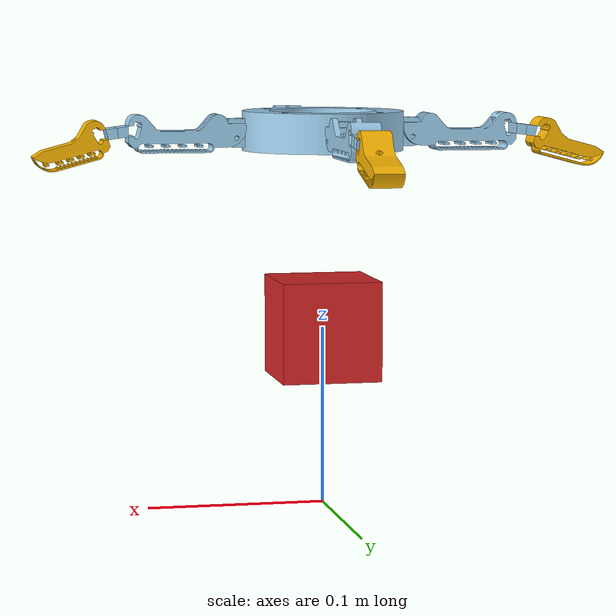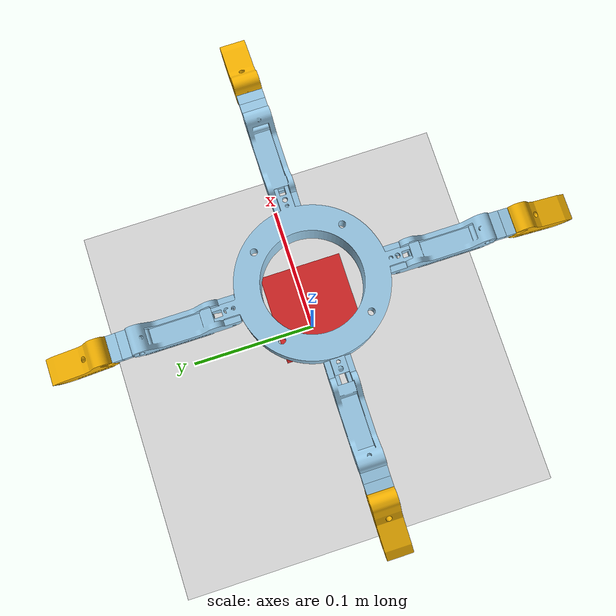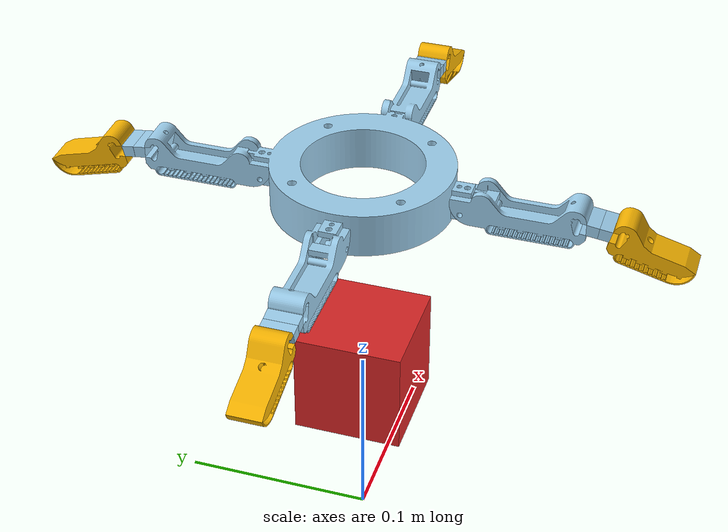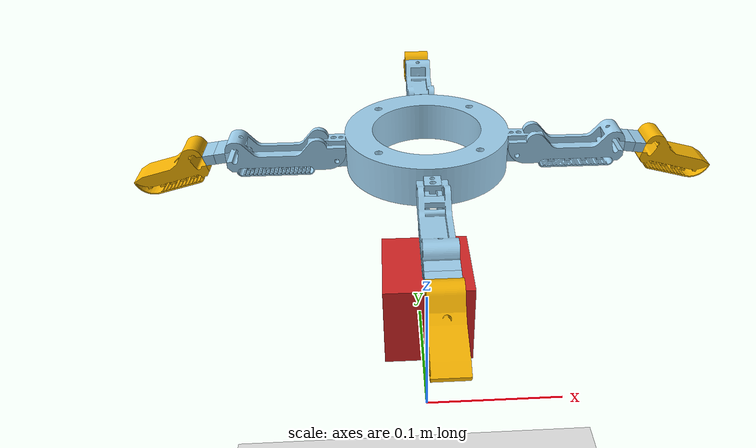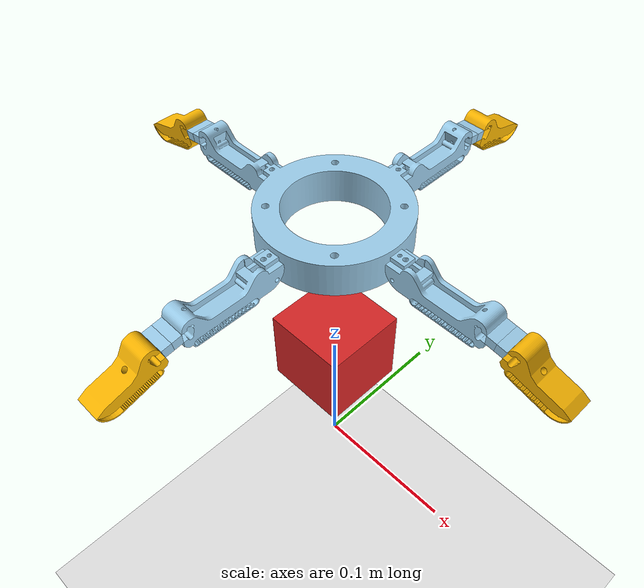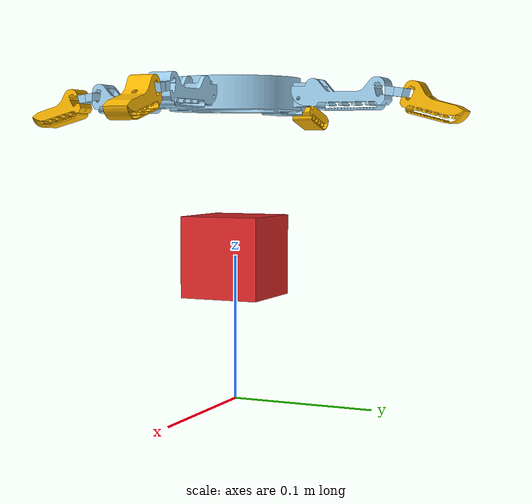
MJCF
<mujoco model="robot_box_scene">
    <include file="robot.xml"/>
    <include file="reorientation_cube.xml"/>
    <worldbody>
        <geom name="ground" type="plane" size="5.5 5.5 0.1" rgba=".9 .9 .9 1.0" pos="0 0 -0.3"/>
    </worldbody>
    <option gravity="0 0 -9.81"/>
    <sensor>
        <touch name="touch_tip" site="touch_zone"/>
        <touch name="touch_tip_2" site="touch_zone_2"/>
        <touch name="touch_tip_3" site="touch_zone_3"/>
        <touch name="touch_tip_4" site="touch_zone_4"/>
    </sensor>
</mujoco>

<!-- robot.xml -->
<!-- Generated using onshape-to-robot -->
<!-- Onshape https://cad.onshape.com/documents/8e3b798062dc68d62ddd1283/w/f24c7ae362d29fd08e04f814/e/846a14a309426dccc22e67ba -->
<mujoco model="C:\Users\jeonj\Desktop\rl\left-rl-with-mujoco\my-robot">
  <compiler angle="radian" meshdir="assets" autolimits="true"/>
  <default>
    <default class="C:\Users\jeonj\Desktop\rl\left-rl-with-mujoco\my-robot">
      <joint frictionloss="0.1" armature="0.005"/>
      <position kp="50" dampratio="1"/>
      <default class="visual">
        <geom type="mesh" contype="0" conaffinity="0" group="2"/>
      </default>
      <default class="collision">
        <geom group="3" contype="1" conaffinity="2"/>
      </default>
    </default>
  </default>
  <!-- Additional tendons.xml -->
  <tendon>
    <fixed name="right_finger_tendon">
      <joint joint="right-body-link1" coef="1.0"/>
      <joint joint="right-link1-joint" coef="1.0"/>
      <joint joint="right-joint-joint" coef="1.0"/>
      <joint joint="right-joint-link2" coef="1.0"/>
    </fixed>
    <fixed name="front_finger_tendon">
      <joint joint="front-body-link1" coef="1.0"/>
      <joint joint="front-link1-joint" coef="1.0"/>
      <joint joint="front-joint-joint" coef="1.0"/>
      <joint joint="front-joint-link2" coef="1.0"/>
    </fixed>
    <fixed name="left_finger_tendon">
      <joint joint="left-body-link1" coef="1.0"/>
      <joint joint="left-link1-joint" coef="1.0"/>
      <joint joint="left-joint-joint" coef="1.0"/>
      <joint joint="left-joint-link2" coef="1.0"/>
    </fixed>
    <fixed name="back_finger_tendon">
      <joint joint="back-body-link1" coef="1.0"/>
      <joint joint="back-link1-joint" coef="1.0"/>
      <joint joint="back-joint-joint" coef="1.0"/>
      <joint joint="back-joint-link2" coef="1.0"/>
    </fixed>
  </tendon>
    <contact>
    <exclude body1="1_moter_based" body2="part_1"/>
    <exclude body1="part_1" body2="part_1_2"/>
    <exclude body1="part_1_2" body2="part_1_3"/>
    <exclude body1="part_1_3" body2="part_1_4"/>
    <exclude body1="1_moter_based" body2="part_1_5"/>
    <exclude body1="part_1_5" body2="part_1_6"/>
    <exclude body1="part_1_6" body2="part_1_7"/>
    <exclude body1="part_1_7" body2="part_1_8"/>
    <exclude body1="1_moter_based" body2="part_1_9"/>
    <exclude body1="part_1_9" body2="part_1_10"/>
    <exclude body1="part_1_10" body2="part_1_11"/>
    <exclude body1="part_1_11" body2="part_1_12"/>
    <exclude body1="1_moter_based" body2="part_1_13"/>
    <exclude body1="part_1_13" body2="part_1_14"/>
    <exclude body1="part_1_14" body2="part_1_15"/>
    <exclude body1="part_1_15" body2="part_1_16"/>
  </contact>
<worldbody>
    <!-- Link 1_moter_based -->
    <body name="1_moter_based" pos="0 0 0.211" quat="1 0 0 0" childclass="C:\Users\jeonj\Desktop\rl\left-rl-with-mujoco\my-robot">
      <inertial pos="1.13586e-07 6.10623e-07 8.0587e-05" mass="0.0988574" fullinertia="7.93967e-05 7.93898e-05 0.000151032 -0 -1.51466e-07 1.56e-10"/>
      <!-- Part 1_moter_based -->
      <geom type="mesh" class="visual" pos="-2.32695e-05 -0 0.011" quat="0.0010577 -0 0.999999 -0" mesh="1_moter_based" material="1_moter_based_material"/>
      <geom type="box" class="collision" pos="-1.23269e-10 0 4.4e-08" quat="0.0010577 -0 0.999999 -0" size="0.0602996 0.0602996 0.011"/>
      <!-- Link part_1 -->
      <body name="part_1" pos="0.0500073 0 -0.00339422" quat="0.70710639 -0.70710639 -0.00074796 -0.00074796">
        <!-- Joint from 1_moter_based to part_1 -->
        <joint axis="0 0 1" name="right-body-link1" type="hinge" range="0 1.5707963267948966"/>
        <inertial pos="0.0303144 -0.00114407 -2.76e-10" mass="0.00967703" fullinertia="5.09882e-07 3.73089e-06 3.70397e-06 2.49e-09 -0 0"/>
        <!-- Part part_1 -->
        <geom type="mesh" class="visual" pos="-0.00605674 0.0178057 -0.008" quat="0.707107 0 -0 -0.707107" mesh="part_1" material="part_1_material"/>
        <geom type="box" class="collision" pos="0.0273631 -0.00252505 0" quat="0.707107 0 -0 -0.707107" size="0.010475 0.0326633 0.008"/>
        <!-- Link part_1_2 -->
        <body name="part_1_2" pos="0.0600264 -0.00109104 0" quat="1 0 0 0">
          <!-- Joint from part_1 to part_1_2 -->
          <joint axis="0 0 1" name="right-link1-joint" type="hinge" range="0.0 0.17453292519943295"/>
          <inertial pos="0 0 0" mass="1e-09" fullinertia="1e-09 1e-09 1e-09 0 0 0"/>
          <!-- Part part_1_2 -->
          <geom type="mesh" class="visual" pos="-0.066152 0.0188877 -0.008" quat="0.707107 0 -0 -0.707107" mesh="part_1__2" material="part_1__2_material"/>
          <geom type="box" class="collision" pos="0.00312812 -0.00254674 0" quat="0.707107 0 -0 -0.707107" size="0.00327122 0.00312809 0.008"/>
          <!-- Link part_1_3 -->
          <body name="part_1_3" pos="0.00550329 0.000724522 -0" quat="1 -0 0 0">
            <!-- Joint from part_1_2 to part_1_3 -->
            <joint axis="0 0 1" name="right-joint-joint" type="hinge" range="0.0 0.17453292519943295"/>
            <inertial pos="0 0 0" mass="1e-09" fullinertia="1e-09 1e-09 1e-09 0 0 0"/>
            <!-- Part part_1_3 -->
            <geom type="mesh" class="visual" pos="-0.0716553 0.0181632 -0.008" quat="0.707107 -0 0 -0.707107" mesh="part_1__3" material="part_1__3_material"/>
            <geom type="box" class="collision" pos="0.00348026 -0.00249631 0" quat="0.707107 -0 0 -0.707107" size="0.00322251 0.00348024 0.008"/>
            <!-- Link part_1_4 -->
            <body name="part_1_4" pos="0.00551629 0.000726234 -0" quat="1 -0 -0 0">
              <!-- Joint from part_1_3 to part_1_4 -->
              <joint axis="0 0 1" name="right-joint-link2" type="hinge" range="0.0 0.17453292519943295"/>
              <inertial pos="0.0177914 0.00463425 -2.4933e-08" mass="0.00789483" fullinertia="4.5574e-07 1.04275e-06 1.16314e-06 -3.06836e-07 2e-12 1e-12"/>
              <!-- Part part_1_4 -->
              <geom type="mesh" class="visual" pos="-0.0771851 0.0174352 -0.008" quat="0.707107 0 0 -0.707107" mesh="part_1__4" material="part_1__4_material"/>
              <geom type="box" class="collision" pos="0.0200098 0.00346335 0" quat="0.707107 0 0 -0.707107" size="0.0137562 0.0209902 0.008"/>
                          <site name="tip" type="sphere" size="0.004" pos="0.0408 0.0034 0" rgba="1 0 0 0.5" group="4"/>
              <site name="touch_zone" type="sphere" size="0.03" pos="0.0200098 0.00346335 0" quat="0.707107 0 0 -0.707107" group="5" rgba="0 1 0 0.15"/>
            </body>
          </body>
        </body>
      </body>
      <!-- Link part_1_5 -->
      <body name="part_1_5" pos="7.40393e-06 -0.05 -0.00349999" quat="0.500529 -0.499471 0.499471 -0.500529">
        <!-- Joint from 1_moter_based to part_1_5 -->
        <joint axis="0 0 1" name="front-body-link1" type="hinge" range="-4.440892098500626e-15 1.5707963267948921"/>
        <inertial pos="0.0303144 -0.00114407 -2.76e-10" mass="0.00967703" fullinertia="5.09882e-07 3.73089e-06 3.70397e-06 2.49e-09 -0 0"/>
        <!-- Part part_1_5 -->
        <geom type="mesh" class="visual" pos="-0.00605674 0.0178057 -0.008" quat="0.707107 -0 -0 -0.707107" mesh="part_1" material="part_1_material"/>
        <geom type="box" class="collision" pos="0.0273631 -0.00252505 0" quat="0.707107 -0 -0 -0.707107" size="0.010475 0.0326633 0.008"/>
        <!-- Link part_1_6 -->
        <body name="part_1_6" pos="0.0600264 -0.00109104 0" quat="1 0 -0 0">
          <!-- Joint from part_1_5 to part_1_6 -->
          <joint axis="0 0 1" name="front-link1-joint" type="hinge" range="0.0 0.17453292519943295"/>
          <inertial pos="0 0 0" mass="1e-09" fullinertia="1e-09 1e-09 1e-09 0 0 0"/>
          <!-- Part part_1_6 -->
          <geom type="mesh" class="visual" pos="-0.066152 0.0188877 -0.008" quat="0.707107 -0 0 -0.707107" mesh="part_1__2" material="part_1__2_material"/>
          <geom type="box" class="collision" pos="0.00312812 -0.00254674 0" quat="0.707107 -0 0 -0.707107" size="0.00327122 0.00312809 0.008"/>
          <!-- Link part_1_7 -->
          <body name="part_1_7" pos="0.00550329 0.000724522 -0" quat="1 -0 -0 -0">
            <!-- Joint from part_1_6 to part_1_7 -->
            <joint axis="0 0 1" name="front-joint-joint" type="hinge" range="0.0 0.17453292519943295"/>
            <inertial pos="0 0 0" mass="1e-09" fullinertia="1e-09 1e-09 1e-09 0 0 0"/>
            <!-- Part part_1_7 -->
            <geom type="mesh" class="visual" pos="-0.0716553 0.0181632 -0.008" quat="0.707107 0 -0 -0.707107" mesh="part_1__3" material="part_1__3_material"/>
            <geom type="box" class="collision" pos="0.00348026 -0.00249631 0" quat="0.707107 0 -0 -0.707107" size="0.00322251 0.00348024 0.008"/>
            <!-- Link part_1_8 -->
            <body name="part_1_8" pos="0.00551629 0.000726234 0" quat="1 0 0 0">
              <!-- Joint from part_1_7 to part_1_8 -->
              <joint axis="0 0 1" name="front-joint-link2" type="hinge" range="0.0 0.17453292519943295"/>
              <inertial pos="0.0177914 0.00463425 -2.4933e-08" mass="0.00789483" fullinertia="4.5574e-07 1.04275e-06 1.16314e-06 -3.06836e-07 2e-12 1e-12"/>
              <!-- Part part_1_8 -->
              <geom type="mesh" class="visual" pos="-0.0771851 0.0174352 -0.008" quat="0.707107 0 0 -0.707107" mesh="part_1__4" material="part_1__4_material"/>
              <geom type="box" class="collision" pos="0.0200098 0.00346335 0" quat="0.707107 0 0 -0.707107" size="0.0137562 0.0209902 0.008"/>
                          <site name="tip_2" type="sphere" size="0.004" pos="0.0408 0.0034 0" rgba="1 0 0 0.5" group="4"/>
              <site name="touch_zone_2" type="sphere" size="0.03" pos="0.0200098 0.00346335 0" quat="0.707107 0 0 -0.707107" group="5" rgba="0 1 0 0.15"/>
            </body>
          </body>
        </body>
      </body>
      <!-- Link part_1_9 -->
      <body name="part_1_9" pos="-0.0499925 -0 -0.00360576" quat="0.00074792 0.00074792 0.70710639 -0.70710639">
        <!-- Joint from 1_moter_based to part_1_9 -->
        <joint axis="0 0 1" name="left-body-link1" type="hinge" range="0 1.5707963267948966"/>
        <inertial pos="0.0303144 -0.00114407 -2.76e-10" mass="0.00967703" fullinertia="5.09882e-07 3.73089e-06 3.70397e-06 2.49e-09 -0 0"/>
        <!-- Part part_1_9 -->
        <geom type="mesh" class="visual" pos="-0.00605674 0.0178057 -0.008" quat="0.707107 0 -0 -0.707107" mesh="part_1" material="part_1_material"/>
        <geom type="box" class="collision" pos="0.0273631 -0.00252505 0" quat="0.707107 0 -0 -0.707107" size="0.010475 0.0326633 0.008"/>
        <!-- Link part_1_10 -->
        <body name="part_1_10" pos="0.0600264 -0.00109104 0" quat="1 -0 0 0">
          <!-- Joint from part_1_9 to part_1_10 -->
          <joint axis="0 0 1" name="left-link1-joint" type="hinge" range="0.0 0.17453292519943295"/>
          <inertial pos="0 0 0" mass="1e-09" fullinertia="1e-09 1e-09 1e-09 0 0 0"/>
          <!-- Part part_1_10 -->
          <geom type="mesh" class="visual" pos="-0.066152 0.0188877 -0.008" quat="0.707107 0 0 -0.707107" mesh="part_1__2" material="part_1__2_material"/>
          <geom type="box" class="collision" pos="0.00312812 -0.00254674 0" quat="0.707107 0 0 -0.707107" size="0.00327122 0.00312809 0.008"/>
          <!-- Link part_1_11 -->
          <body name="part_1_11" pos="0.00550329 0.000724522 0" quat="1 0 -0 0">
            <!-- Joint from part_1_10 to part_1_11 -->
            <joint axis="0 0 1" name="left-joint-joint" type="hinge" range="0.0 0.17453292519943295"/>
            <inertial pos="0 0 0" mass="1e-09" fullinertia="1e-09 1e-09 1e-09 0 0 0"/>
            <!-- Part part_1_11 -->
            <geom type="mesh" class="visual" pos="-0.0716553 0.0181632 -0.008" quat="0.707107 0 0 -0.707107" mesh="part_1__3" material="part_1__3_material"/>
            <geom type="box" class="collision" pos="0.00348026 -0.00249631 0" quat="0.707107 0 0 -0.707107" size="0.00322251 0.00348024 0.008"/>
            <!-- Link part_1_12 -->
            <body name="part_1_12" pos="0.00551629 0.000726234 -0" quat="1 -0 -0 -0">
              <!-- Joint from part_1_11 to part_1_12 -->
              <joint axis="0 0 1" name="left-joint-link2" type="hinge" range="0.0 0.17453292519943295"/>
              <inertial pos="0.0177914 0.00463425 -2.4933e-08" mass="0.00789483" fullinertia="4.5574e-07 1.04275e-06 1.16314e-06 -3.06836e-07 2e-12 1e-12"/>
              <!-- Part part_1_12 -->
              <geom type="mesh" class="visual" pos="-0.0771851 0.0174352 -0.008" quat="0.707107 0 0 -0.707107" mesh="part_1__4" material="part_1__4_material"/>
              <geom type="box" class="collision" pos="0.0200098 0.00346335 0" quat="0.707107 0 0 -0.707107" size="0.0137562 0.0209902 0.008"/>
                          <site name="tip_3" type="sphere" size="0.004" pos="0.0408 0.0034 0" rgba="1 0 0 0.5" group="4"/>
              <site name="touch_zone_3" type="sphere" size="0.03" pos="0.0200098 0.00346335 0" quat="0.707107 0 0 -0.707107" group="5" rgba="0 1 0 0.15"/>
            </body>
          </body>
        </body>
      </body>
      <!-- Link part_1_13 -->
      <body name="part_1_13" pos="7.40393e-06 0.05 -0.00349999" quat="0.499471 -0.500529 -0.500529 0.499471">
        <!-- Joint from 1_moter_based to part_1_13 -->
        <joint axis="0 0 1" name="back-body-link1" type="hinge" range="0.0 1.5707963267948966"/>
        <inertial pos="0.0303144 -0.00114407 -2.76e-10" mass="0.00967703" fullinertia="5.09882e-07 3.73089e-06 3.70397e-06 2.49e-09 -0 0"/>
        <!-- Part part_1_13 -->
        <geom type="mesh" class="visual" pos="-0.00605674 0.0178057 -0.008" quat="0.707107 -0 0 -0.707107" mesh="part_1" material="part_1_material"/>
        <geom type="box" class="collision" pos="0.0273631 -0.00252505 0" quat="0.707107 -0 0 -0.707107" size="0.010475 0.0326633 0.008"/>
        <!-- Link part_1_14 -->
        <body name="part_1_14" pos="0.0600264 -0.00109104 0" quat="1 0 -0 -0">
          <!-- Joint from part_1_13 to part_1_14 -->
          <joint axis="0 0 1" name="back-link1-joint" type="hinge" range="0.0 0.17453292519943295"/>
          <inertial pos="0 0 0" mass="1e-09" fullinertia="1e-09 1e-09 1e-09 0 0 0"/>
          <!-- Part part_1_14 -->
          <geom type="mesh" class="visual" pos="-0.066152 0.0188877 -0.008" quat="0.707107 0 0 -0.707107" mesh="part_1__2" material="part_1__2_material"/>
          <geom type="box" class="collision" pos="0.00312812 -0.00254674 0" quat="0.707107 0 0 -0.707107" size="0.00327122 0.00312809 0.008"/>
          <!-- Link part_1_15 -->
          <body name="part_1_15" pos="0.00550329 0.000724522 -0" quat="1 -0 0 0">
            <!-- Joint from part_1_14 to part_1_15 -->
            <joint axis="0 0 1" name="back-joint-joint" type="hinge" range="0.0 0.17453292519943295"/>
            <inertial pos="0 0 0" mass="1e-09" fullinertia="1e-09 1e-09 1e-09 0 0 0"/>
            <!-- Part part_1_15 -->
            <geom type="mesh" class="visual" pos="-0.0716553 0.0181632 -0.008" quat="0.707107 -0 0 -0.707107" mesh="part_1__3" material="part_1__3_material"/>
            <geom type="box" class="collision" pos="0.00348026 -0.00249631 0" quat="0.707107 -0 0 -0.707107" size="0.00322251 0.00348024 0.008"/>
            <!-- Link part_1_16 -->
            <body name="part_1_16" pos="0.00551629 0.000726234 0" quat="1 -0 0 -0">
              <!-- Joint from part_1_15 to part_1_16 -->
              <joint axis="0 0 1" name="back-joint-link2" type="hinge" range="0.0 0.17453292519943295"/>
              <inertial pos="0.0177914 0.00463425 -2.4933e-08" mass="0.00789483" fullinertia="4.5574e-07 1.04275e-06 1.16314e-06 -3.06836e-07 2e-12 1e-12"/>
              <!-- Part part_1_16 -->
              <geom type="mesh" class="visual" pos="-0.0771851 0.0174352 -0.008" quat="0.707107 0 -0 -0.707107" mesh="part_1__4" material="part_1__4_material"/>
              <geom type="box" class="collision" pos="0.0200098 0.00346335 0" quat="0.707107 0 -0 -0.707107" size="0.0137562 0.0209902 0.008"/>
                          <site name="tip_4" type="sphere" size="0.004" pos="0.0408 0.0034 0" rgba="1 0 0 0.5" group="4"/>
              <site name="touch_zone_4" type="sphere" size="0.03" pos="0.0200098 0.00346335 0" quat="0.707107 0 0 -0.707107" group="5" rgba="0 1 0 0.15"/>
            </body>
          </body>
        </body>
      </body>
    </body>
  </worldbody>
  <asset>
    <mesh file="part_1.stl"/>
    <mesh file="part_1__4.stl"/>
    <mesh file="1_moter_based.stl"/>
    <mesh file="part_1__2.stl"/>
    <mesh file="part_1__3.stl"/>
    <material name="1_moter_based_material" rgba="0.615686 0.811765 0.929412 1"/>
    <material name="part_1_material" rgba="0.615686 0.811765 0.929412 1"/>
    <material name="part_1__2_material" rgba="0.615686 0.811765 0.929412 1"/>
    <material name="part_1__3_material" rgba="0.615686 0.811765 0.929412 1"/>
    <material name="part_1__4_material" rgba="0.980392 0.713725 0.00392157 1"/>
  </asset>
  <actuator>
    <motor name="right_finger_motor" tendon="right_finger_tendon" gear="1" ctrlrange="-1 1"/>
    <motor name="front_finger_motor" tendon="front_finger_tendon" gear="1" ctrlrange="-1 1"/>
    <motor name="left_finger_motor" tendon="left_finger_tendon" gear="1" ctrlrange="-1 1"/>
    <motor name="back_finger_motor" tendon="back_finger_tendon" gear="1" ctrlrange="-1 1"/>
  </actuator>
  <equality/>
</mujoco>

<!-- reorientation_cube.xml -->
<mujoco model="cube_56mm">
  <!-- 56x56x56mm 정육면체, x/y 슬라이드만 있어 높이(z) 고정, 회전 없음.
       z=0.10m: (CAD 수정본 기준) 4손가락 완전히 오므렸을 때 손끝이 모이는 실측 높이 -->
  <default>
    <default class="cube">
      <geom friction="1.0 0.01 0.001" conaffinity="1" condim="4"/>
    </default>
  </default>
  <worldbody>
    <body name="cube" pos="0 0 0.10" quat="1 0 0 0" childclass="cube">
      <joint name="cube_slide_x" type="slide" axis="1 0 0" damping="0.5"/>
      <joint name="cube_slide_y" type="slide" axis="0 1 0" damping="0.5"/>
      <geom name="cube" type="box" size="0.028 0.028 0.028" mass="0.07"
            group="2" rgba="0.85 0.15 0.15 1"/>
      <site name="cube_center" pos="0 0 0" group="4" size="0.001"/>
    </body>
  </worldbody>
</mujoco>
